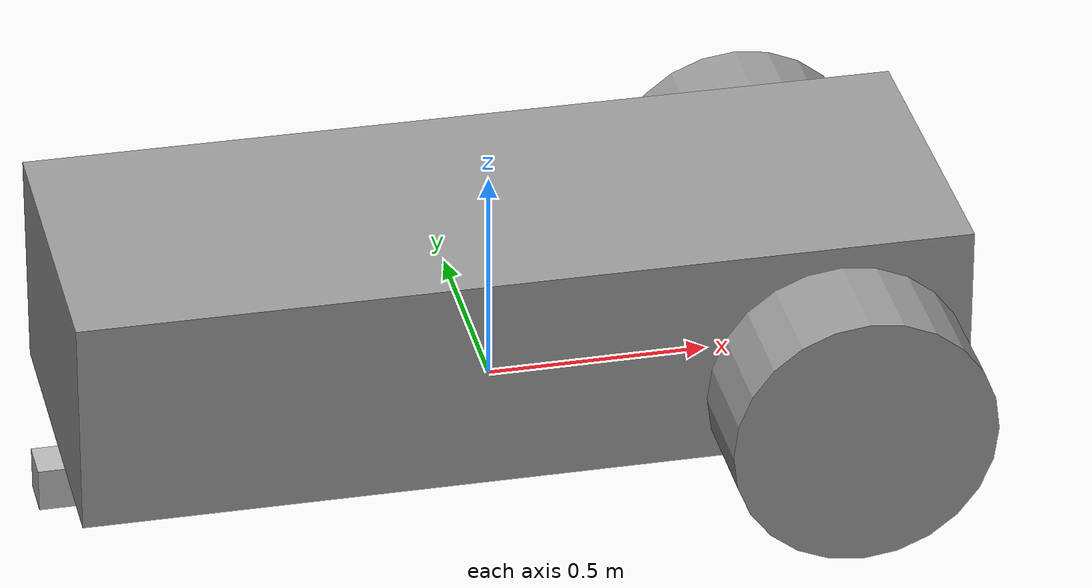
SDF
<?xml version='1.0'?>
<sdf version='1.6'>
  <model name='robot'>
    <link name='link_0'>
      <pose frame=''>0.014298 0.001733 0.2 0 -0 0</pose>
      <inertial>
        <mass>1</mass>
        <inertia>
          <ixx>0.166667</ixx>
          <ixy>0</ixy>
          <ixz>0</ixz>
          <iyy>0.166667</iyy>
          <iyz>0</iyz>
          <izz>0.166667</izz>
        </inertia>
        <pose frame=''>0 0 0 0 -0 0</pose>
      </inertial>
      <gravity>1</gravity>
      <self_collide>0</self_collide>
      <kinematic>0</kinematic>
      <visual name='visual'>
        <pose frame=''>0 0 0 0 -0 0</pose>
        <geometry>
          <box>
            <size>2 0.75 0.5</size>
          </box>
        </geometry>
        <material>
          <lighting>1</lighting>
          <script>
            <uri>file://media/materials/scripts/gazebo.material</uri>
            <name>Gazebo/Grey</name>
          </script>
          <ambient>0.3 0.3 0.3 1</ambient>
          <diffuse>0.7 0.7 0.7 1</diffuse>
          <specular>0.01 0.01 0.01 1</specular>
          <emissive>0 0 0 1</emissive>
          <shader type='vertex'>
            <normal_map>__default__</normal_map>
          </shader>
        </material>
        <cast_shadows>1</cast_shadows>
        <transparency>0</transparency>
      </visual>
      <collision name='collision'>
        <laser_retro>0</laser_retro>
        <max_contacts>10</max_contacts>
        <pose frame=''>0 0 0 0 -0 0</pose>
        <geometry>
          <box>
            <size>2 0.75 0.5</size>
          </box>
        </geometry>
        <surface>
          <friction>
            <ode>
              <mu>1</mu>
              <mu2>1</mu2>
              <fdir1>0 0 0</fdir1>
              <slip1>0</slip1>
              <slip2>0</slip2>
            </ode>
            <torsional>
              <coefficient>1</coefficient>
              <patch_radius>0</patch_radius>
              <surface_radius>0</surface_radius>
              <use_patch_radius>1</use_patch_radius>
              <ode>
                <slip>0</slip>
              </ode>
            </torsional>
          </friction>
          <bounce>
            <restitution_coefficient>0</restitution_coefficient>
            <threshold>1e+06</threshold>
          </bounce>
          <contact>
            <collide_without_contact>0</collide_without_contact>
            <collide_without_contact_bitmask>1</collide_without_contact_bitmask>
            <collide_bitmask>1</collide_bitmask>
            <ode>
              <soft_cfm>0</soft_cfm>
              <soft_erp>0.2</soft_erp>
              <kp>1e+13</kp>
              <kd>1</kd>
              <max_vel>0.01</max_vel>
              <min_depth>0</min_depth>
            </ode>
            <bullet>
              <split_impulse>1</split_impulse>
              <split_impulse_penetration_threshold>-0.01</split_impulse_penetration_threshold>
              <soft_cfm>0</soft_cfm>
              <soft_erp>0.2</soft_erp>
              <kp>1e+13</kp>
              <kd>1</kd>
            </bullet>
          </contact>
        </surface>
      </collision>
    </link>
    <link name='link_1'>
      <pose frame=''>0.714298 -0.498296 0.1 1.5707 -0 0</pose>
      <inertial>
        <mass>1</mass>
        <inertia>
          <ixx>0.145833</ixx>
          <ixy>0</ixy>
          <ixz>0</ixz>
          <iyy>0.145833</iyy>
          <iyz>0</iyz>
          <izz>0.125</izz>
        </inertia>
        <pose frame=''>0 0 0 0 -0 0</pose>
      </inertial>
      <gravity>1</gravity>
      <self_collide>0</self_collide>
      <kinematic>0</kinematic>
      <visual name='visual'>
        <pose frame=''>0 0 0 0 -0 0</pose>
        <geometry>
          <cylinder>
            <radius>0.3</radius>
            <length>0.25</length>
          </cylinder>
        </geometry>
        <material>
          <lighting>1</lighting>
          <script>
            <uri>file://media/materials/scripts/gazebo.material</uri>
            <name>Gazebo/Grey</name>
          </script>
          <ambient>0.3 0.3 0.3 1</ambient>
          <diffuse>0.7 0.7 0.7 1</diffuse>
          <specular>0.01 0.01 0.01 1</specular>
          <emissive>0 0 0 1</emissive>
          <shader type='vertex'>
            <normal_map>__default__</normal_map>
          </shader>
        </material>
        <cast_shadows>1</cast_shadows>
        <transparency>0</transparency>
      </visual>
      <collision name='collision'>
        <laser_retro>0</laser_retro>
        <max_contacts>10</max_contacts>
        <pose frame=''>0 0 0 0 -0 0</pose>
        <geometry>
          <cylinder>
            <radius>0.3</radius>
            <length>0.25</length>
          </cylinder>
        </geometry>
        <surface>
          <friction>
            <ode>
              <mu>1</mu>
              <mu2>1</mu2>
              <fdir1>0 0 0</fdir1>
              <slip1>0</slip1>
              <slip2>0</slip2>
            </ode>
            <torsional>
              <coefficient>1</coefficient>
              <patch_radius>0</patch_radius>
              <surface_radius>0</surface_radius>
              <use_patch_radius>1</use_patch_radius>
              <ode>
                <slip>0</slip>
              </ode>
            </torsional>
          </friction>
          <bounce>
            <restitution_coefficient>0</restitution_coefficient>
            <threshold>1e+06</threshold>
          </bounce>
          <contact>
            <collide_without_contact>0</collide_without_contact>
            <collide_without_contact_bitmask>1</collide_without_contact_bitmask>
            <collide_bitmask>1</collide_bitmask>
            <ode>
              <soft_cfm>0</soft_cfm>
              <soft_erp>0.2</soft_erp>
              <kp>1e+13</kp>
              <kd>1</kd>
              <max_vel>0.01</max_vel>
              <min_depth>0</min_depth>
            </ode>
            <bullet>
              <split_impulse>1</split_impulse>
              <split_impulse_penetration_threshold>-0.01</split_impulse_penetration_threshold>
              <soft_cfm>0</soft_cfm>
              <soft_erp>0.2</soft_erp>
              <kp>1e+13</kp>
              <kd>1</kd>
            </bullet>
          </contact>
        </surface>
      </collision>
    </link>
    <link name='link_1_clone'>
      <pose frame=''>0.714298 0.501762 0.1 1.5707 -0 0</pose>
      <inertial>
        <mass>1</mass>
        <inertia>
          <ixx>0.145833</ixx>
          <ixy>0</ixy>
          <ixz>0</ixz>
          <iyy>0.145833</iyy>
          <iyz>0</iyz>
          <izz>0.125</izz>
        </inertia>
        <pose frame=''>0 0 0 0 -0 0</pose>
      </inertial>
      <self_collide>0</self_collide>
      <kinematic>0</kinematic>
      <gravity>1</gravity>
      <visual name='visual'>
        <pose frame=''>0 0 0 0 -0 0</pose>
        <geometry>
          <cylinder>
            <radius>0.3</radius>
            <length>0.25</length>
          </cylinder>
        </geometry>
        <material>
          <lighting>1</lighting>
          <script>
            <uri>file://media/materials/scripts/gazebo.material</uri>
            <name>Gazebo/Grey</name>
          </script>
          <ambient>0.3 0.3 0.3 1</ambient>
          <diffuse>0.7 0.7 0.7 1</diffuse>
          <specular>0.01 0.01 0.01 1</specular>
          <emissive>0 0 0 1</emissive>
          <shader type='vertex'>
            <normal_map>__default__</normal_map>
          </shader>
        </material>
        <cast_shadows>1</cast_shadows>
        <transparency>0</transparency>
      </visual>
      <collision name='collision'>
        <laser_retro>0</laser_retro>
        <max_contacts>10</max_contacts>
        <pose frame=''>0 0 0 0 -0 0</pose>
        <geometry>
          <cylinder>
            <radius>0.3</radius>
            <length>0.25</length>
          </cylinder>
        </geometry>
        <surface>
          <friction>
            <ode>
              <mu>1</mu>
              <mu2>1</mu2>
              <fdir1>0 0 0</fdir1>
              <slip1>0</slip1>
              <slip2>0</slip2>
            </ode>
            <torsional>
              <coefficient>1</coefficient>
              <patch_radius>0</patch_radius>
              <surface_radius>0</surface_radius>
              <use_patch_radius>1</use_patch_radius>
              <ode>
                <slip>0</slip>
              </ode>
            </torsional>
          </friction>
          <bounce>
            <restitution_coefficient>0</restitution_coefficient>
            <threshold>1e+06</threshold>
          </bounce>
          <contact>
            <collide_without_contact>0</collide_without_contact>
            <collide_without_contact_bitmask>1</collide_without_contact_bitmask>
            <collide_bitmask>1</collide_bitmask>
            <ode>
              <soft_cfm>0</soft_cfm>
              <soft_erp>0.2</soft_erp>
              <kp>1e+13</kp>
              <kd>1</kd>
              <max_vel>0.01</max_vel>
              <min_depth>0</min_depth>
            </ode>
            <bullet>
              <split_impulse>1</split_impulse>
              <split_impulse_penetration_threshold>-0.01</split_impulse_penetration_threshold>
              <soft_cfm>0</soft_cfm>
              <soft_erp>0.2</soft_erp>
              <kp>1e+13</kp>
              <kd>1</kd>
            </bullet>
          </contact>
        </surface>
      </collision>
    </link>
    <link name='link_2'>
      <pose frame=''>-0.785702 0.001733 0 0 -0 0</pose>
      <inertial>
        <mass>1</mass>
        <inertia>
          <ixx>0.1</ixx>
          <ixy>0</ixy>
          <ixz>0</ixz>
          <iyy>0.1</iyy>
          <iyz>0</iyz>
          <izz>0.1</izz>
        </inertia>
        <pose frame=''>0 0 0 0 -0 0</pose>
      </inertial>
      <gravity>1</gravity>
      <self_collide>0</self_collide>
      <kinematic>0</kinematic>
      <visual name='visual'>
        <pose frame=''>0 0 0 0 -0 0</pose>
        <geometry>
          <sphere>
            <radius>0.2</radius>
          </sphere>
        </geometry>
        <material>
          <lighting>1</lighting>
          <script>
            <uri>file://media/materials/scripts/gazebo.material</uri>
            <name>Gazebo/Grey</name>
          </script>
          <ambient>0.3 0.3 0.3 1</ambient>
          <diffuse>0.7 0.7 0.7 1</diffuse>
          <specular>0.01 0.01 0.01 1</specular>
          <emissive>0 0 0 1</emissive>
          <shader type='vertex'>
            <normal_map>__default__</normal_map>
          </shader>
        </material>
        <cast_shadows>1</cast_shadows>
        <transparency>0</transparency>
      </visual>
      <collision name='collision'>
        <laser_retro>0</laser_retro>
        <max_contacts>10</max_contacts>
        <pose frame=''>0 0 0 0 -0 0</pose>
        <geometry>
          <sphere>
            <radius>0.2</radius>
          </sphere>
        </geometry>
        <surface>
          <friction>
            <ode>
              <mu>1</mu>
              <mu2>1</mu2>
              <fdir1>0 0 0</fdir1>
              <slip1>0</slip1>
              <slip2>0</slip2>
            </ode>
            <torsional>
              <coefficient>1</coefficient>
              <patch_radius>0</patch_radius>
              <surface_radius>0</surface_radius>
              <use_patch_radius>1</use_patch_radius>
              <ode>
                <slip>0</slip>
              </ode>
            </torsional>
          </friction>
          <bounce>
            <restitution_coefficient>0</restitution_coefficient>
            <threshold>1e+06</threshold>
          </bounce>
          <contact>
            <collide_without_contact>0</collide_without_contact>
            <collide_without_contact_bitmask>1</collide_without_contact_bitmask>
            <collide_bitmask>1</collide_bitmask>
            <ode>
              <soft_cfm>0</soft_cfm>
              <soft_erp>0.2</soft_erp>
              <kp>1e+13</kp>
              <kd>1</kd>
              <max_vel>0.01</max_vel>
              <min_depth>0</min_depth>
            </ode>
            <bullet>
              <split_impulse>1</split_impulse>
              <split_impulse_penetration_threshold>-0.01</split_impulse_penetration_threshold>
              <soft_cfm>0</soft_cfm>
              <soft_erp>0.2</soft_erp>
              <kp>1e+13</kp>
              <kd>1</kd>
            </bullet>
          </contact>
        </surface>
      </collision>
    </link>
    <model name='depth_camera'>
      <link name='link'>
        <pose frame=''>0 0 0.05 0 -0 0</pose>
        <inertial>
          <mass>0.1</mass>
          <inertia>
            <ixx>0.000166667</ixx>
            <iyy>0.000166667</iyy>
            <izz>0.000166667</izz>
            <ixy>0</ixy>
            <ixz>0</ixz>
            <iyz>0</iyz>
          </inertia>
        </inertial>
        <collision name='collision'>
          <geometry>
            <box>
              <size>0.1 0.1 0.1</size>
            </box>
          </geometry>
        </collision>
        <visual name='visual'>
          <geometry>
            <box>
              <size>0.1 0.1 0.1</size>
            </box>
          </geometry>
        </visual>
        <sensor name='camera' type='depth'>
          <camera name='__default__'>
            <horizontal_fov>1.047</horizontal_fov>
            <image>
              <width>320</width>
              <height>240</height>
            </image>
            <clip>
              <near>0.1</near>
              <far>100</far>
            </clip>
          </camera>
          <always_on>1</always_on>
          <update_rate>30</update_rate>
          <visualize>1</visualize>
        </sensor>
      </link>
      <pose frame=''>-0.985702 0.001733 -0.2 0 -0 0</pose>
    </model>
    <model name='depth_camera_0'>
      <link name='link'>
        <pose frame=''>0 0 0.05 0 -0 0</pose>
        <inertial>
          <mass>0.1</mass>
          <inertia>
            <ixx>0.000166667</ixx>
            <iyy>0.000166667</iyy>
            <izz>0.000166667</izz>
            <ixy>0</ixy>
            <ixz>0</ixz>
            <iyz>0</iyz>
          </inertia>
        </inertial>
        <collision name='collision'>
          <geometry>
            <box>
              <size>0.1 0.1 0.1</size>
            </box>
          </geometry>
        </collision>
        <visual name='visual'>
          <geometry>
            <box>
              <size>0.1 0.1 0.1</size>
            </box>
          </geometry>
        </visual>
        <sensor name='camera' type='depth'>
          <camera name='__default__'>
            <horizontal_fov>1.047</horizontal_fov>
            <image>
              <width>320</width>
              <height>240</height>
            </image>
            <clip>
              <near>0.1</near>
              <far>100</far>
            </clip>
          </camera>
          <always_on>1</always_on>
          <update_rate>30</update_rate>
          <visualize>1</visualize>
        </sensor>
      </link>
      <pose frame=''>0.328512 -0.008664 -0.2 0 -0 0</pose>
    </model>
    <joint name='link_0_JOINT_0' type='revolute'>
      <parent>link_0</parent>
      <child>link_1_clone</child>
      <pose frame=''>0 0 0 0 -0 0</pose>
      <axis>
        <xyz>0 0 1</xyz>
        <use_parent_model_frame>0</use_parent_model_frame>
        <limit>
          <lower>-1.79769e+308</lower>
          <upper>1.79769e+308</upper>
          <effort>-1</effort>
          <velocity>-1</velocity>
        </limit>
        <dynamics>
          <spring_reference>0</spring_reference>
          <spring_stiffness>0</spring_stiffness>
          <damping>0</damping>
        </dynamics>
      </axis>
      <physics>
        <ode>
          <limit>
            <cfm>0</cfm>
            <erp>0.2</erp>
          </limit>
          <suspension>
            <cfm>0</cfm>
            <erp>0.2</erp>
          </suspension>
        </ode>
      </physics>
    </joint>
    <joint name='link_0_JOINT_1' type='revolute'>
      <parent>link_0</parent>
      <child>link_1</child>
      <pose frame=''>0 0 0 0 -0 0</pose>
      <axis>
        <xyz>0 0 1</xyz>
        <use_parent_model_frame>0</use_parent_model_frame>
        <limit>
          <lower>-1.79769e+308</lower>
          <upper>1.79769e+308</upper>
          <effort>-1</effort>
          <velocity>-1</velocity>
        </limit>
        <dynamics>
          <spring_reference>0</spring_reference>
          <spring_stiffness>0</spring_stiffness>
          <damping>0</damping>
        </dynamics>
      </axis>
      <physics>
        <ode>
          <limit>
            <cfm>0</cfm>
            <erp>0.2</erp>
          </limit>
          <suspension>
            <cfm>0</cfm>
            <erp>0.2</erp>
          </suspension>
        </ode>
      </physics>
    </joint>
    <joint name='link_0_JOINT_2' type='ball'>
      <parent>link_0</parent>
      <child>link_2</child>
      <pose frame=''>0 0 0 0 -0 0</pose>
      <physics>
        <ode>
          <limit>
            <cfm>0</cfm>
            <erp>0.2</erp>
          </limit>
          <suspension>
            <cfm>0</cfm>
            <erp>0.2</erp>
          </suspension>
        </ode>
      </physics>
    </joint>
    <joint name='link_0_JOINT_3' type='fixed'>
      <parent>link_0</parent>
      <child>depth_camera_0::link</child>
      <pose frame=''>0 0 0 0 -0 0</pose>
      <physics>
        <ode>
          <limit>
            <cfm>0</cfm>
            <erp>0.2</erp>
          </limit>
          <suspension>
            <cfm>0</cfm>
            <erp>0.2</erp>
          </suspension>
        </ode>
      </physics>
    </joint>
    <static>0</static>
    <allow_auto_disable>1</allow_auto_disable>
  </model>
</sdf>
